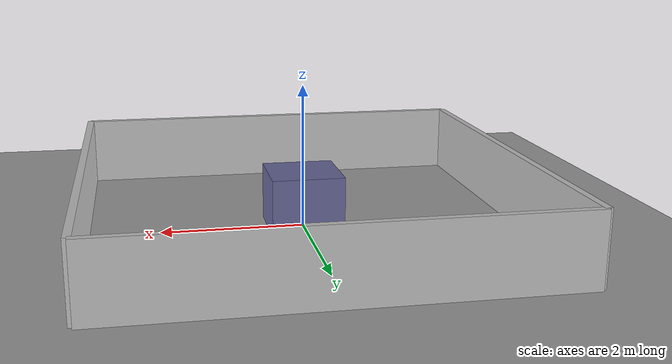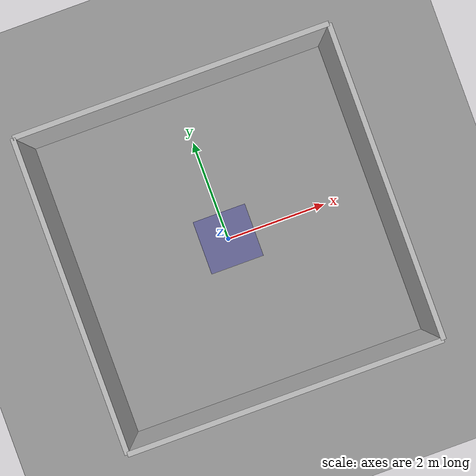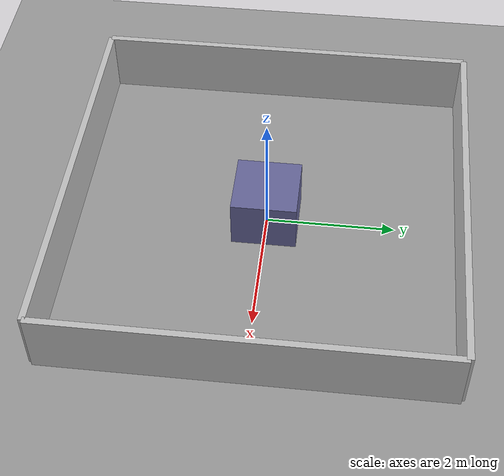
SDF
<?xml version="1.0" ?>
<sdf version="1.8">
  <world name="obstacle_room">
    <physics name="default_physics" type="dartsim">
      <max_step_size>0.0005</max_step_size>
      <real_time_factor>1.0</real_time_factor>
      <real_time_update_rate>2000</real_time_update_rate>
    </physics>
    <scene>
      <ambient>0.6 0.6 0.6 1</ambient>
      <background>0.5 0.5 0.5 1</background>
      <shadows>false</shadows>
    </scene>
    <gui fullscreen="0">
      <camera name="user_camera">
        <pose>0 0 8 3.14159 1.5708 0</pose>
      </camera>
    </gui>
    <plugin filename="gz-sim-physics-system" name="gz::sim::systems::Physics"/>
    <plugin filename="gz-sim-user-commands-system" name="gz::sim::systems::UserCommands"/>
    <plugin filename="gz-sim-scene-broadcaster-system" name="gz::sim::systems::SceneBroadcaster"/>
    <plugin filename="gz-sim-sensors-system" name="gz::sim::systems::Sensors">
      <render_engine>ogre2</render_engine>
    </plugin>
    <light type="directional" name="sun">
      <cast_shadows>true</cast_shadows>
      <pose>0 0 10 0 0 0</pose>
      <diffuse>1.0 1.0 1.0 1</diffuse>
      <specular>0.2 0.2 0.2 1</specular>
      <direction>-0.5 0.1 -0.9</direction>
    </light>
    <model name="ground_plane">
      <static>true</static>
      <link name="link">
        <collision name="collision">
          <geometry><plane><normal>0 0 1</normal></plane></geometry>
        </collision>
        <visual name="visual">
          <geometry><plane><normal>0 0 1</normal><size>100 100</size></plane></geometry>
          <material>
            <ambient>0.6 0.6 0.6 1</ambient>
            <diffuse>0.6 0.6 0.6 1</diffuse>
          </material>
        </visual>
      </link>
    </model>
    <model name="wall_north">
      <static>true</static>
      <pose>0 3 0.5 0 0 0</pose>
      <link name="link">
        <collision name="collision"><geometry><box><size>6 0.1 1</size></box></geometry></collision>
        <visual name="visual">
          <geometry><box><size>6 0.1 1</size></box></geometry>
          <material><ambient>0.75 0.75 0.75 1</ambient><diffuse>0.75 0.75 0.75 1</diffuse></material>
        </visual>
      </link>
    </model>
    <model name="wall_south">
      <static>true</static>
      <pose>0 -3 0.5 0 0 0</pose>
      <link name="link">
        <collision name="collision"><geometry><box><size>6 0.1 1</size></box></geometry></collision>
        <visual name="visual">
          <geometry><box><size>6 0.1 1</size></box></geometry>
          <material><ambient>0.75 0.75 0.75 1</ambient><diffuse>0.75 0.75 0.75 1</diffuse></material>
        </visual>
      </link>
    </model>
    <model name="wall_east">
      <static>true</static>
      <pose>3 0 0.5 0 0 0</pose>
      <link name="link">
        <collision name="collision"><geometry><box><size>0.1 6 1</size></box></geometry></collision>
        <visual name="visual">
          <geometry><box><size>0.1 6 1</size></box></geometry>
          <material><ambient>0.75 0.75 0.75 1</ambient><diffuse>0.75 0.75 0.75 1</diffuse></material>
        </visual>
      </link>
    </model>
    <model name="wall_west">
      <static>true</static>
      <pose>-3 0 0.5 0 0 0</pose>
      <link name="link">
        <collision name="collision"><geometry><box><size>0.1 6 1</size></box></geometry></collision>
        <visual name="visual">
          <geometry><box><size>0.1 6 1</size></box></geometry>
          <material><ambient>0.75 0.75 0.75 1</ambient><diffuse>0.75 0.75 0.75 1</diffuse></material>
        </visual>
      </link>
    </model>
    <model name="obstacle_box">
      <static>true</static>
      <pose>0 0 0.4 0 0 0</pose>
      <link name="link">
        <collision name="collision"><geometry><box><size>1 1 0.8</size></box></geometry></collision>
        <visual name="visual">
          <geometry><box><size>1 1 0.8</size></box></geometry>
          <material><ambient>0.4 0.4 0.6 1</ambient><diffuse>0.4 0.4 0.6 1</diffuse></material>
        </visual>
      </link>
    </model>
  </world>
</sdf>
